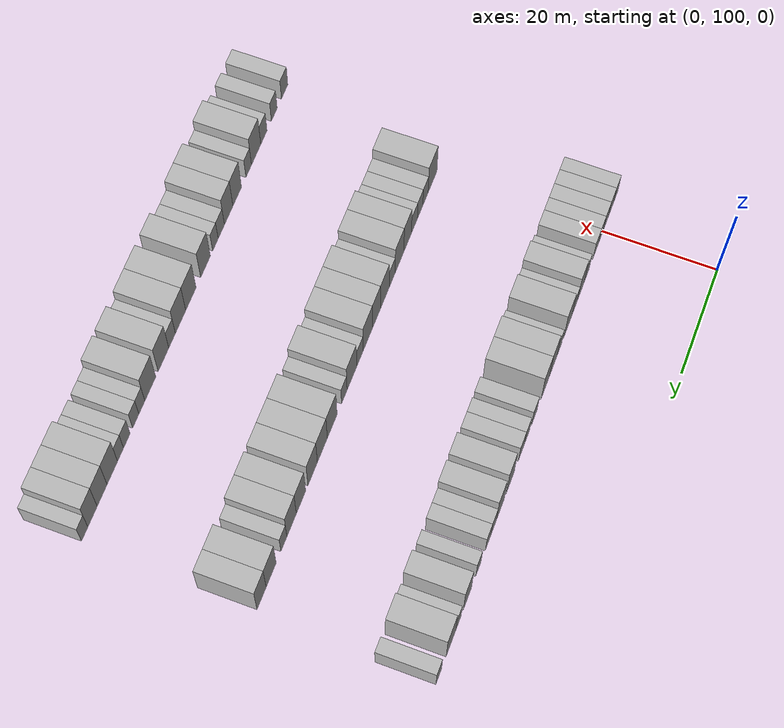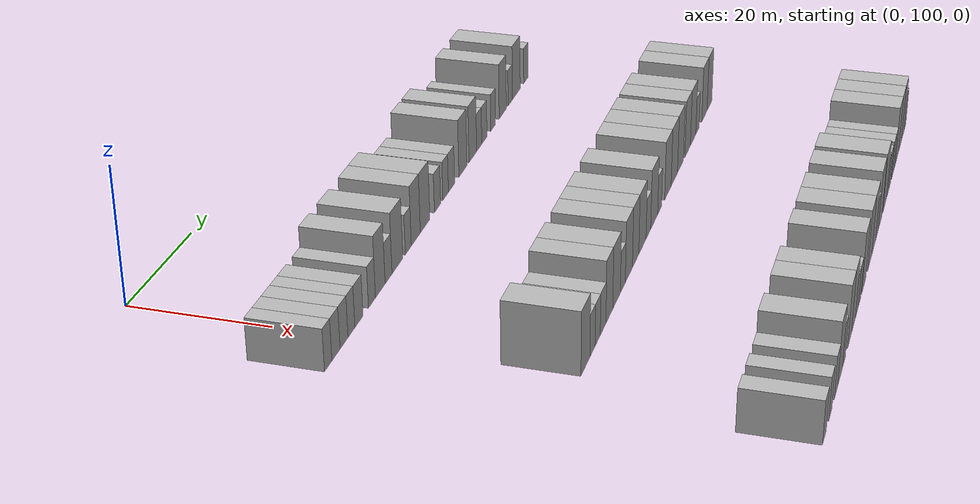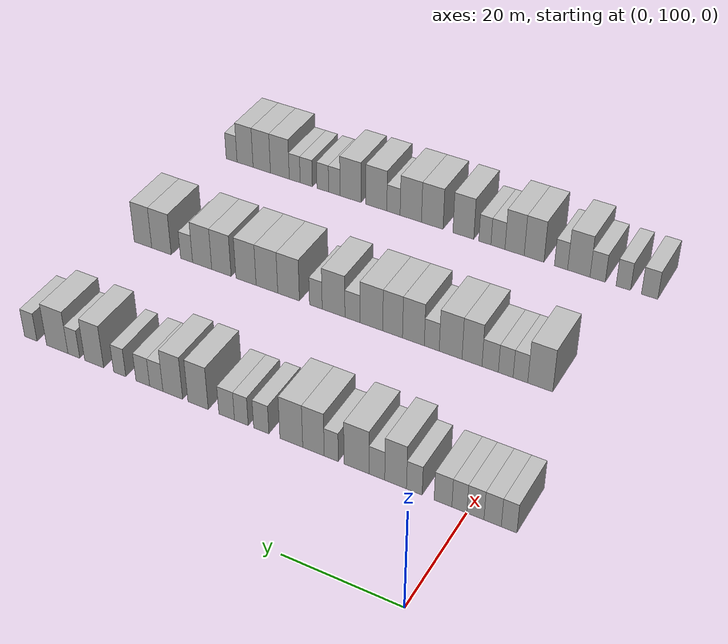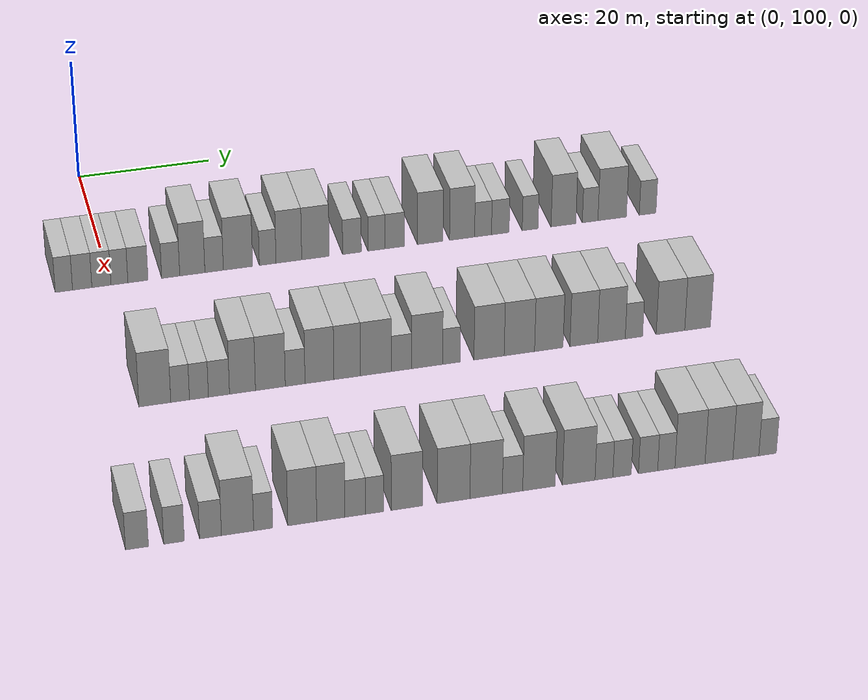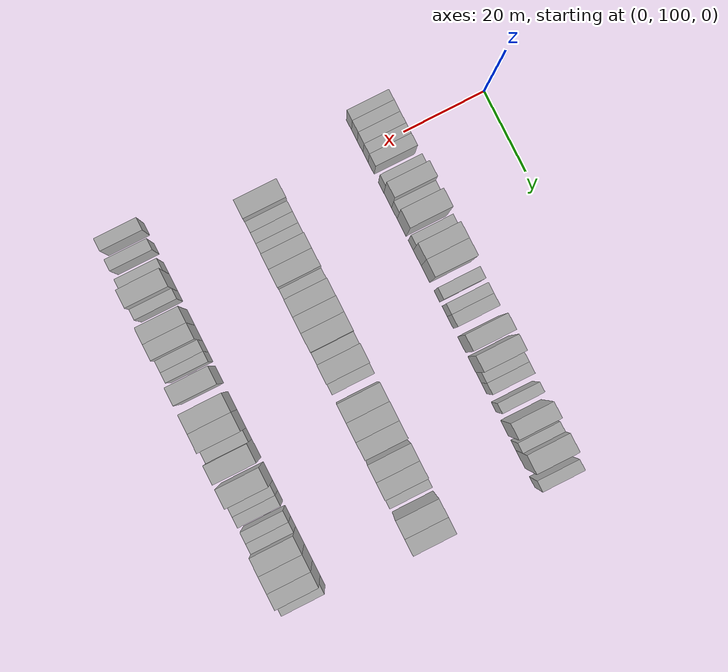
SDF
<sdf version="1.6">
 <world name="default">
  <model name="building_94">
   <static>1</static>
   <pose>25.0000 93.2036 0 0.000000 0.000000 0.000000</pose>
   <link name="link">
    <pose>0 0 3.00 0 0 0</pose>
    <collision name="collision"><geometry><box><size>10.0000 2.5115 6.0000</size></box></geometry></collision>
    <visual name="visual">
     <cast_shadows>0</cast_shadows>
     <geometry><box><size>10.0000 2.5115 6.0000</size></box></geometry>
     <material>
      <script>
       <uri>model://HANNAS_wall/materials/scripts</uri>
       <uri>model://HANNAS_wall/materials/textures</uri>
       <name>vrc/HANNAS_wall</name>
      </script>
     </material>
    </visual>
   </link>
  </model>
  <model name="building_95">
   <static>1</static>
   <pose>25.0000 95.8612 0 0.000000 0.000000 0.000000</pose>
   <link name="link">
    <pose>0 0 3.00 0 0 0</pose>
    <collision name="collision"><geometry><box><size>10.0000 2.8036 6.0000</size></box></geometry></collision>
    <visual name="visual">
     <cast_shadows>0</cast_shadows>
     <geometry><box><size>10.0000 2.8036 6.0000</size></box></geometry>
     <material>
      <script>
       <uri>model://HANNAS_wall/materials/scripts</uri>
       <uri>model://HANNAS_wall/materials/textures</uri>
       <name>vrc/HANNAS_wall</name>
      </script>
     </material>
    </visual>
   </link>
  </model>
  <model name="building_96">
   <static>1</static>
   <pose>25.0000 98.6532 0 0.000000 0.000000 0.000000</pose>
   <link name="link">
    <pose>0 0 3.00 0 0 0</pose>
    <collision name="collision"><geometry><box><size>10.0000 2.7805 6.0000</size></box></geometry></collision>
    <visual name="visual">
     <cast_shadows>0</cast_shadows>
     <geometry><box><size>10.0000 2.7805 6.0000</size></box></geometry>
     <material>
      <script>
       <uri>model://HANNAS_wall/materials/scripts</uri>
       <uri>model://HANNAS_wall/materials/textures</uri>
       <name>vrc/HANNAS_wall</name>
      </script>
     </material>
    </visual>
   </link>
  </model>
  <model name="building_97">
   <static>1</static>
   <pose>25.0000 101.2772 0 0.000000 0.000000 0.000000</pose>
   <link name="link">
    <pose>0 0 3.00 0 0 0</pose>
    <collision name="collision"><geometry><box><size>10.0000 2.4674 6.0000</size></box></geometry></collision>
    <visual name="visual">
     <cast_shadows>0</cast_shadows>
     <geometry><box><size>10.0000 2.4674 6.0000</size></box></geometry>
     <material>
      <script>
       <uri>model://HANNAS_wall/materials/scripts</uri>
       <uri>model://HANNAS_wall/materials/textures</uri>
       <name>vrc/HANNAS_wall</name>
      </script>
     </material>
    </visual>
   </link>
  </model>
  <model name="building_98">
   <static>1</static>
   <pose>25.0000 103.9851 0 0.000000 0.000000 0.000000</pose>
   <link name="link">
    <pose>0 0 3.00 0 0 0</pose>
    <collision name="collision"><geometry><box><size>10.0000 2.9483 6.0000</size></box></geometry></collision>
    <visual name="visual">
     <cast_shadows>0</cast_shadows>
     <geometry><box><size>10.0000 2.9483 6.0000</size></box></geometry>
     <material>
      <script>
       <uri>model://HANNAS_wall/materials/scripts</uri>
       <uri>model://HANNAS_wall/materials/textures</uri>
       <name>vrc/HANNAS_wall</name>
      </script>
     </material>
    </visual>
   </link>
  </model>
  <model name="building_99">
   <static>1</static>
   <pose>25.0000 108.7819 0 0.000000 0.000000 0.000000</pose>
   <link name="link">
    <pose>0 0 3.00 0 0 0</pose>
    <collision name="collision"><geometry><box><size>10.0000 2.6453 6.0000</size></box></geometry></collision>
    <visual name="visual">
     <cast_shadows>0</cast_shadows>
     <geometry><box><size>10.0000 2.6453 6.0000</size></box></geometry>
     <material>
      <script>
       <uri>model://HANNAS_wall/materials/scripts</uri>
       <uri>model://HANNAS_wall/materials/textures</uri>
       <name>vrc/HANNAS_wall</name>
      </script>
     </material>
    </visual>
   </link>
  </model>
  <model name="building_100">
   <static>1</static>
   <pose>25.0000 111.9564 0 0.000000 0.000000 0.000000</pose>
   <link name="link">
    <pose>0 0 4.50 0 0 0</pose>
    <collision name="collision"><geometry><box><size>10.0000 3.7037 9.0000</size></box></geometry></collision>
    <visual name="visual">
     <cast_shadows>0</cast_shadows>
     <geometry><box><size>10.0000 3.7037 9.0000</size></box></geometry>
     <material>
      <script>
       <uri>model://HANNAS_wall/materials/scripts</uri>
       <uri>model://HANNAS_wall/materials/textures</uri>
       <name>vrc/HANNAS_wall</name>
      </script>
     </material>
    </visual>
   </link>
  </model>
  <model name="building_101">
   <static>1</static>
   <pose>25.0000 115.1670 0 0.000000 0.000000 0.000000</pose>
   <link name="link">
    <pose>0 0 3.00 0 0 0</pose>
    <collision name="collision"><geometry><box><size>10.0000 2.7174 6.0000</size></box></geometry></collision>
    <visual name="visual">
     <cast_shadows>0</cast_shadows>
     <geometry><box><size>10.0000 2.7174 6.0000</size></box></geometry>
     <material>
      <script>
       <uri>model://HANNAS_wall/materials/scripts</uri>
       <uri>model://HANNAS_wall/materials/textures</uri>
       <name>vrc/HANNAS_wall</name>
      </script>
     </material>
    </visual>
   </link>
  </model>
  <model name="building_102">
   <static>1</static>
   <pose>25.0000 118.6928 0 0.000000 0.000000 0.000000</pose>
   <link name="link">
    <pose>0 0 4.50 0 0 0</pose>
    <collision name="collision"><geometry><box><size>10.0000 4.3341 9.0000</size></box></geometry></collision>
    <visual name="visual">
     <cast_shadows>0</cast_shadows>
     <geometry><box><size>10.0000 4.3341 9.0000</size></box></geometry>
     <material>
      <script>
       <uri>model://HANNAS_wall/materials/scripts</uri>
       <uri>model://HANNAS_wall/materials/textures</uri>
       <name>vrc/HANNAS_wall</name>
      </script>
     </material>
    </visual>
   </link>
  </model>
  <model name="building_103">
   <static>1</static>
   <pose>25.0000 123.0985 0 0.000000 0.000000 0.000000</pose>
   <link name="link">
    <pose>0 0 3.00 0 0 0</pose>
    <collision name="collision"><geometry><box><size>10.0000 2.4773 6.0000</size></box></geometry></collision>
    <visual name="visual">
     <cast_shadows>0</cast_shadows>
     <geometry><box><size>10.0000 2.4773 6.0000</size></box></geometry>
     <material>
      <script>
       <uri>model://HANNAS_wall/materials/scripts</uri>
       <uri>model://HANNAS_wall/materials/textures</uri>
       <name>vrc/HANNAS_wall</name>
      </script>
     </material>
    </visual>
   </link>
  </model>
  <model name="building_104">
   <static>1</static>
   <pose>25.0000 126.2475 0 0.000000 0.000000 0.000000</pose>
   <link name="link">
    <pose>0 0 4.50 0 0 0</pose>
    <collision name="collision"><geometry><box><size>10.0000 3.8206 9.0000</size></box></geometry></collision>
    <visual name="visual">
     <cast_shadows>0</cast_shadows>
     <geometry><box><size>10.0000 3.8206 9.0000</size></box></geometry>
     <material>
      <script>
       <uri>model://HANNAS_wall/materials/scripts</uri>
       <uri>model://HANNAS_wall/materials/textures</uri>
       <name>vrc/HANNAS_wall</name>
      </script>
     </material>
    </visual>
   </link>
  </model>
  <model name="building_105">
   <static>1</static>
   <pose>25.0000 130.2165 0 0.000000 0.000000 0.000000</pose>
   <link name="link">
    <pose>0 0 4.50 0 0 0</pose>
    <collision name="collision"><geometry><box><size>10.0000 4.1174 9.0000</size></box></geometry></collision>
    <visual name="visual">
     <cast_shadows>0</cast_shadows>
     <geometry><box><size>10.0000 4.1174 9.0000</size></box></geometry>
     <material>
      <script>
       <uri>model://HANNAS_wall/materials/scripts</uri>
       <uri>model://HANNAS_wall/materials/textures</uri>
       <name>vrc/HANNAS_wall</name>
      </script>
     </material>
    </visual>
   </link>
  </model>
  <model name="building_106">
   <static>1</static>
   <pose>25.0000 135.6750 0 0.000000 0.000000 0.000000</pose>
   <link name="link">
    <pose>0 0 3.00 0 0 0</pose>
    <collision name="collision"><geometry><box><size>10.0000 2.7996 6.0000</size></box></geometry></collision>
    <visual name="visual">
     <cast_shadows>0</cast_shadows>
     <geometry><box><size>10.0000 2.7996 6.0000</size></box></geometry>
     <material>
      <script>
       <uri>model://HANNAS_wall/materials/scripts</uri>
       <uri>model://HANNAS_wall/materials/textures</uri>
       <name>vrc/HANNAS_wall</name>
      </script>
     </material>
    </visual>
   </link>
  </model>
  <model name="building_107">
   <static>1</static>
   <pose>25.0000 139.3497 0 0.000000 0.000000 0.000000</pose>
   <link name="link">
    <pose>0 0 3.00 0 0 0</pose>
    <collision name="collision"><geometry><box><size>10.0000 2.5498 6.0000</size></box></geometry></collision>
    <visual name="visual">
     <cast_shadows>0</cast_shadows>
     <geometry><box><size>10.0000 2.5498 6.0000</size></box></geometry>
     <material>
      <script>
       <uri>model://HANNAS_wall/materials/scripts</uri>
       <uri>model://HANNAS_wall/materials/textures</uri>
       <name>vrc/HANNAS_wall</name>
      </script>
     </material>
    </visual>
   </link>
  </model>
  <model name="building_108">
   <static>1</static>
   <pose>25.0000 142.0823 0 0.000000 0.000000 0.000000</pose>
   <link name="link">
    <pose>0 0 3.00 0 0 0</pose>
    <collision name="collision"><geometry><box><size>10.0000 2.9153 6.0000</size></box></geometry></collision>
    <visual name="visual">
     <cast_shadows>0</cast_shadows>
     <geometry><box><size>10.0000 2.9153 6.0000</size></box></geometry>
     <material>
      <script>
       <uri>model://HANNAS_wall/materials/scripts</uri>
       <uri>model://HANNAS_wall/materials/textures</uri>
       <name>vrc/HANNAS_wall</name>
      </script>
     </material>
    </visual>
   </link>
  </model>
  <model name="building_109">
   <static>1</static>
   <pose>25.0000 147.4731 0 0.000000 0.000000 0.000000</pose>
   <link name="link">
    <pose>0 0 4.50 0 0 0</pose>
    <collision name="collision"><geometry><box><size>10.0000 3.8664 9.0000</size></box></geometry></collision>
    <visual name="visual">
     <cast_shadows>0</cast_shadows>
     <geometry><box><size>10.0000 3.8664 9.0000</size></box></geometry>
     <material>
      <script>
       <uri>model://HANNAS_wall/materials/scripts</uri>
       <uri>model://HANNAS_wall/materials/textures</uri>
       <name>vrc/HANNAS_wall</name>
      </script>
     </material>
    </visual>
   </link>
  </model>
  <model name="building_110">
   <static>1</static>
   <pose>25.0000 152.3108 0 0.000000 0.000000 0.000000</pose>
   <link name="link">
    <pose>0 0 4.50 0 0 0</pose>
    <collision name="collision"><geometry><box><size>10.0000 3.8090 9.0000</size></box></geometry></collision>
    <visual name="visual">
     <cast_shadows>0</cast_shadows>
     <geometry><box><size>10.0000 3.8090 9.0000</size></box></geometry>
     <material>
      <script>
       <uri>model://HANNAS_wall/materials/scripts</uri>
       <uri>model://HANNAS_wall/materials/textures</uri>
       <name>vrc/HANNAS_wall</name>
      </script>
     </material>
    </visual>
   </link>
  </model>
  <model name="building_111">
   <static>1</static>
   <pose>25.0000 155.5063 0 0.000000 0.000000 0.000000</pose>
   <link name="link">
    <pose>0 0 3.00 0 0 0</pose>
    <collision name="collision"><geometry><box><size>10.0000 2.5820 6.0000</size></box></geometry></collision>
    <visual name="visual">
     <cast_shadows>0</cast_shadows>
     <geometry><box><size>10.0000 2.5820 6.0000</size></box></geometry>
     <material>
      <script>
       <uri>model://HANNAS_wall/materials/scripts</uri>
       <uri>model://HANNAS_wall/materials/textures</uri>
       <name>vrc/HANNAS_wall</name>
      </script>
     </material>
    </visual>
   </link>
  </model>
  <model name="building_112">
   <static>1</static>
   <pose>25.0000 158.1431 0 0.000000 0.000000 0.000000</pose>
   <link name="link">
    <pose>0 0 3.00 0 0 0</pose>
    <collision name="collision"><geometry><box><size>10.0000 2.6916 6.0000</size></box></geometry></collision>
    <visual name="visual">
     <cast_shadows>0</cast_shadows>
     <geometry><box><size>10.0000 2.6916 6.0000</size></box></geometry>
     <material>
      <script>
       <uri>model://HANNAS_wall/materials/scripts</uri>
       <uri>model://HANNAS_wall/materials/textures</uri>
       <name>vrc/HANNAS_wall</name>
      </script>
     </material>
    </visual>
   </link>
  </model>
  <model name="building_113">
   <static>1</static>
   <pose>25.0000 162.7051 0 0.000000 0.000000 0.000000</pose>
   <link name="link">
    <pose>0 0 3.00 0 0 0</pose>
    <collision name="collision"><geometry><box><size>10.0000 2.4324 6.0000</size></box></geometry></collision>
    <visual name="visual">
     <cast_shadows>0</cast_shadows>
     <geometry><box><size>10.0000 2.4324 6.0000</size></box></geometry>
     <material>
      <script>
       <uri>model://HANNAS_wall/materials/scripts</uri>
       <uri>model://HANNAS_wall/materials/textures</uri>
       <name>vrc/HANNAS_wall</name>
      </script>
     </material>
    </visual>
   </link>
  </model>
  <model name="building_114">
   <static>1</static>
   <pose>25.0000 167.8328 0 0.000000 0.000000 0.000000</pose>
   <link name="link">
    <pose>0 0 4.50 0 0 0</pose>
    <collision name="collision"><geometry><box><size>10.0000 3.8229 9.0000</size></box></geometry></collision>
    <visual name="visual">
     <cast_shadows>0</cast_shadows>
     <geometry><box><size>10.0000 3.8229 9.0000</size></box></geometry>
     <material>
      <script>
       <uri>model://HANNAS_wall/materials/scripts</uri>
       <uri>model://HANNAS_wall/materials/textures</uri>
       <name>vrc/HANNAS_wall</name>
      </script>
     </material>
    </visual>
   </link>
  </model>
  <model name="building_115">
   <static>1</static>
   <pose>25.0000 171.9515 0 0.000000 0.000000 0.000000</pose>
   <link name="link">
    <pose>0 0 3.00 0 0 0</pose>
    <collision name="collision"><geometry><box><size>10.0000 2.4145 6.0000</size></box></geometry></collision>
    <visual name="visual">
     <cast_shadows>0</cast_shadows>
     <geometry><box><size>10.0000 2.4145 6.0000</size></box></geometry>
     <material>
      <script>
       <uri>model://HANNAS_wall/materials/scripts</uri>
       <uri>model://HANNAS_wall/materials/textures</uri>
       <name>vrc/HANNAS_wall</name>
      </script>
     </material>
    </visual>
   </link>
  </model>
  <model name="building_116">
   <static>1</static>
   <pose>25.0000 175.3631 0 0.000000 0.000000 0.000000</pose>
   <link name="link">
    <pose>0 0 4.50 0 0 0</pose>
    <collision name="collision"><geometry><box><size>10.0000 4.4089 9.0000</size></box></geometry></collision>
    <visual name="visual">
     <cast_shadows>0</cast_shadows>
     <geometry><box><size>10.0000 4.4089 9.0000</size></box></geometry>
     <material>
      <script>
       <uri>model://HANNAS_wall/materials/scripts</uri>
       <uri>model://HANNAS_wall/materials/textures</uri>
       <name>vrc/HANNAS_wall</name>
      </script>
     </material>
    </visual>
   </link>
  </model>
  <model name="building_117">
   <static>1</static>
   <pose>25.0000 180.8667 0 0.000000 0.000000 0.000000</pose>
   <link name="link">
    <pose>0 0 3.00 0 0 0</pose>
    <collision name="collision"><geometry><box><size>10.0000 2.5982 6.0000</size></box></geometry></collision>
    <visual name="visual">
     <cast_shadows>0</cast_shadows>
     <geometry><box><size>10.0000 2.5982 6.0000</size></box></geometry>
     <material>
      <script>
       <uri>model://HANNAS_wall/materials/scripts</uri>
       <uri>model://HANNAS_wall/materials/textures</uri>
       <name>vrc/HANNAS_wall</name>
      </script>
     </material>
    </visual>
   </link>
  </model>
  <model name="building_231">
   <static>1</static>
   <pose>55.0000 101.2768 0 0.000000 0.000000 0.000000</pose>
   <link name="link">
    <pose>0 0 4.50 0 0 0</pose>
    <collision name="collision"><geometry><box><size>10.0000 4.4122 9.0000</size></box></geometry></collision>
    <visual name="visual">
     <cast_shadows>0</cast_shadows>
     <geometry><box><size>10.0000 4.4122 9.0000</size></box></geometry>
     <material>
      <script>
       <uri>model://HANNAS_wall/materials/scripts</uri>
       <uri>model://HANNAS_wall/materials/textures</uri>
       <name>vrc/HANNAS_wall</name>
      </script>
     </material>
    </visual>
   </link>
  </model>
  <model name="building_232">
   <static>1</static>
   <pose>55.0000 104.7790 0 0.000000 0.000000 0.000000</pose>
   <link name="link">
    <pose>0 0 3.00 0 0 0</pose>
    <collision name="collision"><geometry><box><size>10.0000 2.5921 6.0000</size></box></geometry></collision>
    <visual name="visual">
     <cast_shadows>0</cast_shadows>
     <geometry><box><size>10.0000 2.5921 6.0000</size></box></geometry>
     <material>
      <script>
       <uri>model://HANNAS_wall/materials/scripts</uri>
       <uri>model://HANNAS_wall/materials/textures</uri>
       <name>vrc/HANNAS_wall</name>
      </script>
     </material>
    </visual>
   </link>
  </model>
  <model name="building_233">
   <static>1</static>
   <pose>55.0000 107.3937 0 0.000000 0.000000 0.000000</pose>
   <link name="link">
    <pose>0 0 3.00 0 0 0</pose>
    <collision name="collision"><geometry><box><size>10.0000 2.6373 6.0000</size></box></geometry></collision>
    <visual name="visual">
     <cast_shadows>0</cast_shadows>
     <geometry><box><size>10.0000 2.6373 6.0000</size></box></geometry>
     <material>
      <script>
       <uri>model://HANNAS_wall/materials/scripts</uri>
       <uri>model://HANNAS_wall/materials/textures</uri>
       <name>vrc/HANNAS_wall</name>
      </script>
     </material>
    </visual>
   </link>
  </model>
  <model name="building_234">
   <static>1</static>
   <pose>55.0000 110.1844 0 0.000000 0.000000 0.000000</pose>
   <link name="link">
    <pose>0 0 3.00 0 0 0</pose>
    <collision name="collision"><geometry><box><size>10.0000 2.9441 6.0000</size></box></geometry></collision>
    <visual name="visual">
     <cast_shadows>0</cast_shadows>
     <geometry><box><size>10.0000 2.9441 6.0000</size></box></geometry>
     <material>
      <script>
       <uri>model://HANNAS_wall/materials/scripts</uri>
       <uri>model://HANNAS_wall/materials/textures</uri>
       <name>vrc/HANNAS_wall</name>
      </script>
     </material>
    </visual>
   </link>
  </model>
  <model name="building_235">
   <static>1</static>
   <pose>55.0000 113.4729 0 0.000000 0.000000 0.000000</pose>
   <link name="link">
    <pose>0 0 4.50 0 0 0</pose>
    <collision name="collision"><geometry><box><size>10.0000 3.6328 9.0000</size></box></geometry></collision>
    <visual name="visual">
     <cast_shadows>0</cast_shadows>
     <geometry><box><size>10.0000 3.6328 9.0000</size></box></geometry>
     <material>
      <script>
       <uri>model://HANNAS_wall/materials/scripts</uri>
       <uri>model://HANNAS_wall/materials/textures</uri>
       <name>vrc/HANNAS_wall</name>
      </script>
     </material>
    </visual>
   </link>
  </model>
  <model name="building_236">
   <static>1</static>
   <pose>55.0000 117.3850 0 0.000000 0.000000 0.000000</pose>
   <link name="link">
    <pose>0 0 4.50 0 0 0</pose>
    <collision name="collision"><geometry><box><size>10.0000 4.1915 9.0000</size></box></geometry></collision>
    <visual name="visual">
     <cast_shadows>0</cast_shadows>
     <geometry><box><size>10.0000 4.1915 9.0000</size></box></geometry>
     <material>
      <script>
       <uri>model://HANNAS_wall/materials/scripts</uri>
       <uri>model://HANNAS_wall/materials/textures</uri>
       <name>vrc/HANNAS_wall</name>
      </script>
     </material>
    </visual>
   </link>
  </model>
  <model name="building_237">
   <static>1</static>
   <pose>55.0000 120.8680 0 0.000000 0.000000 0.000000</pose>
   <link name="link">
    <pose>0 0 3.00 0 0 0</pose>
    <collision name="collision"><geometry><box><size>10.0000 2.7745 6.0000</size></box></geometry></collision>
    <visual name="visual">
     <cast_shadows>0</cast_shadows>
     <geometry><box><size>10.0000 2.7745 6.0000</size></box></geometry>
     <material>
      <script>
       <uri>model://HANNAS_wall/materials/scripts</uri>
       <uri>model://HANNAS_wall/materials/textures</uri>
       <name>vrc/HANNAS_wall</name>
      </script>
     </material>
    </visual>
   </link>
  </model>
  <model name="building_238">
   <static>1</static>
   <pose>55.0000 124.2968 0 0.000000 0.000000 0.000000</pose>
   <link name="link">
    <pose>0 0 4.50 0 0 0</pose>
    <collision name="collision"><geometry><box><size>10.0000 4.0833 9.0000</size></box></geometry></collision>
    <visual name="visual">
     <cast_shadows>0</cast_shadows>
     <geometry><box><size>10.0000 4.0833 9.0000</size></box></geometry>
     <material>
      <script>
       <uri>model://HANNAS_wall/materials/scripts</uri>
       <uri>model://HANNAS_wall/materials/textures</uri>
       <name>vrc/HANNAS_wall</name>
      </script>
     </material>
    </visual>
   </link>
  </model>
  <model name="building_239">
   <static>1</static>
   <pose>55.0000 128.2107 0 0.000000 0.000000 0.000000</pose>
   <link name="link">
    <pose>0 0 4.50 0 0 0</pose>
    <collision name="collision"><geometry><box><size>10.0000 3.7443 9.0000</size></box></geometry></collision>
    <visual name="visual">
     <cast_shadows>0</cast_shadows>
     <geometry><box><size>10.0000 3.7443 9.0000</size></box></geometry>
     <material>
      <script>
       <uri>model://HANNAS_wall/materials/scripts</uri>
       <uri>model://HANNAS_wall/materials/textures</uri>
       <name>vrc/HANNAS_wall</name>
      </script>
     </material>
    </visual>
   </link>
  </model>
  <model name="building_240">
   <static>1</static>
   <pose>55.0000 132.2738 0 0.000000 0.000000 0.000000</pose>
   <link name="link">
    <pose>0 0 4.50 0 0 0</pose>
    <collision name="collision"><geometry><box><size>10.0000 4.3819 9.0000</size></box></geometry></collision>
    <visual name="visual">
     <cast_shadows>0</cast_shadows>
     <geometry><box><size>10.0000 4.3819 9.0000</size></box></geometry>
     <material>
      <script>
       <uri>model://HANNAS_wall/materials/scripts</uri>
       <uri>model://HANNAS_wall/materials/textures</uri>
       <name>vrc/HANNAS_wall</name>
      </script>
     </material>
    </visual>
   </link>
  </model>
  <model name="building_241">
   <static>1</static>
   <pose>55.0000 135.9151 0 0.000000 0.000000 0.000000</pose>
   <link name="link">
    <pose>0 0 3.00 0 0 0</pose>
    <collision name="collision"><geometry><box><size>10.0000 2.9008 6.0000</size></box></geometry></collision>
    <visual name="visual">
     <cast_shadows>0</cast_shadows>
     <geometry><box><size>10.0000 2.9008 6.0000</size></box></geometry>
     <material>
      <script>
       <uri>model://HANNAS_wall/materials/scripts</uri>
       <uri>model://HANNAS_wall/materials/textures</uri>
       <name>vrc/HANNAS_wall</name>
      </script>
     </material>
    </visual>
   </link>
  </model>
  <model name="building_242">
   <static>1</static>
   <pose>55.0000 139.5942 0 0.000000 0.000000 0.000000</pose>
   <link name="link">
    <pose>0 0 4.50 0 0 0</pose>
    <collision name="collision"><geometry><box><size>10.0000 4.4574 9.0000</size></box></geometry></collision>
    <visual name="visual">
     <cast_shadows>0</cast_shadows>
     <geometry><box><size>10.0000 4.4574 9.0000</size></box></geometry>
     <material>
      <script>
       <uri>model://HANNAS_wall/materials/scripts</uri>
       <uri>model://HANNAS_wall/materials/textures</uri>
       <name>vrc/HANNAS_wall</name>
      </script>
     </material>
    </visual>
   </link>
  </model>
  <model name="building_243">
   <static>1</static>
   <pose>55.0000 143.0747 0 0.000000 0.000000 0.000000</pose>
   <link name="link">
    <pose>0 0 3.00 0 0 0</pose>
    <collision name="collision"><geometry><box><size>10.0000 2.5034 6.0000</size></box></geometry></collision>
    <visual name="visual">
     <cast_shadows>0</cast_shadows>
     <geometry><box><size>10.0000 2.5034 6.0000</size></box></geometry>
     <material>
      <script>
       <uri>model://HANNAS_wall/materials/scripts</uri>
       <uri>model://HANNAS_wall/materials/textures</uri>
       <name>vrc/HANNAS_wall</name>
      </script>
     </material>
    </visual>
   </link>
  </model>
  <model name="building_244">
   <static>1</static>
   <pose>55.0000 148.5050 0 0.000000 0.000000 0.000000</pose>
   <link name="link">
    <pose>0 0 4.50 0 0 0</pose>
    <collision name="collision"><geometry><box><size>10.0000 4.3573 9.0000</size></box></geometry></collision>
    <visual name="visual">
     <cast_shadows>0</cast_shadows>
     <geometry><box><size>10.0000 4.3573 9.0000</size></box></geometry>
     <material>
      <script>
       <uri>model://HANNAS_wall/materials/scripts</uri>
       <uri>model://HANNAS_wall/materials/textures</uri>
       <name>vrc/HANNAS_wall</name>
      </script>
     </material>
    </visual>
   </link>
  </model>
  <model name="building_245">
   <static>1</static>
   <pose>55.0000 152.8853 0 0.000000 0.000000 0.000000</pose>
   <link name="link">
    <pose>0 0 4.50 0 0 0</pose>
    <collision name="collision"><geometry><box><size>10.0000 4.4033 9.0000</size></box></geometry></collision>
    <visual name="visual">
     <cast_shadows>0</cast_shadows>
     <geometry><box><size>10.0000 4.4033 9.0000</size></box></geometry>
     <material>
      <script>
       <uri>model://HANNAS_wall/materials/scripts</uri>
       <uri>model://HANNAS_wall/materials/textures</uri>
       <name>vrc/HANNAS_wall</name>
      </script>
     </material>
    </visual>
   </link>
  </model>
  <model name="building_246">
   <static>1</static>
   <pose>55.0000 157.1606 0 0.000000 0.000000 0.000000</pose>
   <link name="link">
    <pose>0 0 4.50 0 0 0</pose>
    <collision name="collision"><geometry><box><size>10.0000 4.1473 9.0000</size></box></geometry></collision>
    <visual name="visual">
     <cast_shadows>0</cast_shadows>
     <geometry><box><size>10.0000 4.1473 9.0000</size></box></geometry>
     <material>
      <script>
       <uri>model://HANNAS_wall/materials/scripts</uri>
       <uri>model://HANNAS_wall/materials/textures</uri>
       <name>vrc/HANNAS_wall</name>
      </script>
     </material>
    </visual>
   </link>
  </model>
  <model name="building_247">
   <static>1</static>
   <pose>55.0000 162.2534 0 0.000000 0.000000 0.000000</pose>
   <link name="link">
    <pose>0 0 4.50 0 0 0</pose>
    <collision name="collision"><geometry><box><size>10.0000 4.0384 9.0000</size></box></geometry></collision>
    <visual name="visual">
     <cast_shadows>0</cast_shadows>
     <geometry><box><size>10.0000 4.0384 9.0000</size></box></geometry>
     <material>
      <script>
       <uri>model://HANNAS_wall/materials/scripts</uri>
       <uri>model://HANNAS_wall/materials/textures</uri>
       <name>vrc/HANNAS_wall</name>
      </script>
     </material>
    </visual>
   </link>
  </model>
  <model name="building_248">
   <static>1</static>
   <pose>55.0000 166.2968 0 0.000000 0.000000 0.000000</pose>
   <link name="link">
    <pose>0 0 4.50 0 0 0</pose>
    <collision name="collision"><geometry><box><size>10.0000 4.0483 9.0000</size></box></geometry></collision>
    <visual name="visual">
     <cast_shadows>0</cast_shadows>
     <geometry><box><size>10.0000 4.0483 9.0000</size></box></geometry>
     <material>
      <script>
       <uri>model://HANNAS_wall/materials/scripts</uri>
       <uri>model://HANNAS_wall/materials/textures</uri>
       <name>vrc/HANNAS_wall</name>
      </script>
     </material>
    </visual>
   </link>
  </model>
  <model name="building_249">
   <static>1</static>
   <pose>55.0000 169.5948 0 0.000000 0.000000 0.000000</pose>
   <link name="link">
    <pose>0 0 3.00 0 0 0</pose>
    <collision name="collision"><geometry><box><size>10.0000 2.5478 6.0000</size></box></geometry></collision>
    <visual name="visual">
     <cast_shadows>0</cast_shadows>
     <geometry><box><size>10.0000 2.5478 6.0000</size></box></geometry>
     <material>
      <script>
       <uri>model://HANNAS_wall/materials/scripts</uri>
       <uri>model://HANNAS_wall/materials/textures</uri>
       <name>vrc/HANNAS_wall</name>
      </script>
     </material>
    </visual>
   </link>
  </model>
  <model name="building_250">
   <static>1</static>
   <pose>55.0000 174.9757 0 0.000000 0.000000 0.000000</pose>
   <link name="link">
    <pose>0 0 4.50 0 0 0</pose>
    <collision name="collision"><geometry><box><size>10.0000 4.2140 9.0000</size></box></geometry></collision>
    <visual name="visual">
     <cast_shadows>0</cast_shadows>
     <geometry><box><size>10.0000 4.2140 9.0000</size></box></geometry>
     <material>
      <script>
       <uri>model://HANNAS_wall/materials/scripts</uri>
       <uri>model://HANNAS_wall/materials/textures</uri>
       <name>vrc/HANNAS_wall</name>
      </script>
     </material>
    </visual>
   </link>
  </model>
  <model name="building_251">
   <static>1</static>
   <pose>55.0000 178.9825 0 0.000000 0.000000 0.000000</pose>
   <link name="link">
    <pose>0 0 4.50 0 0 0</pose>
    <collision name="collision"><geometry><box><size>10.0000 3.7996 9.0000</size></box></geometry></collision>
    <visual name="visual">
     <cast_shadows>0</cast_shadows>
     <geometry><box><size>10.0000 3.7996 9.0000</size></box></geometry>
     <material>
      <script>
       <uri>model://HANNAS_wall/materials/scripts</uri>
       <uri>model://HANNAS_wall/materials/textures</uri>
       <name>vrc/HANNAS_wall</name>
      </script>
     </material>
    </visual>
   </link>
  </model>
  <model name="building_363">
   <static>1</static>
   <pose>85.0000 93.7568 0 0.000000 0.000000 0.000000</pose>
   <link name="link">
    <pose>0 0 3.00 0 0 0</pose>
    <collision name="collision"><geometry><box><size>10.0000 2.9893 6.0000</size></box></geometry></collision>
    <visual name="visual">
     <cast_shadows>0</cast_shadows>
     <geometry><box><size>10.0000 2.9893 6.0000</size></box></geometry>
     <material>
      <script>
       <uri>model://HANNAS_wall/materials/scripts</uri>
       <uri>model://HANNAS_wall/materials/textures</uri>
       <name>vrc/HANNAS_wall</name>
      </script>
     </material>
    </visual>
   </link>
  </model>
  <model name="building_364">
   <static>1</static>
   <pose>85.0000 98.5959 0 0.000000 0.000000 0.000000</pose>
   <link name="link">
    <pose>0 0 3.00 0 0 0</pose>
    <collision name="collision"><geometry><box><size>10.0000 2.6890 6.0000</size></box></geometry></collision>
    <visual name="visual">
     <cast_shadows>0</cast_shadows>
     <geometry><box><size>10.0000 2.6890 6.0000</size></box></geometry>
     <material>
      <script>
       <uri>model://HANNAS_wall/materials/scripts</uri>
       <uri>model://HANNAS_wall/materials/textures</uri>
       <name>vrc/HANNAS_wall</name>
      </script>
     </material>
    </visual>
   </link>
  </model>
  <model name="building_365">
   <static>1</static>
   <pose>85.0000 103.3752 0 0.000000 0.000000 0.000000</pose>
   <link name="link">
    <pose>0 0 3.00 0 0 0</pose>
    <collision name="collision"><geometry><box><size>10.0000 2.8696 6.0000</size></box></geometry></collision>
    <visual name="visual">
     <cast_shadows>0</cast_shadows>
     <geometry><box><size>10.0000 2.8696 6.0000</size></box></geometry>
     <material>
      <script>
       <uri>model://HANNAS_wall/materials/scripts</uri>
       <uri>model://HANNAS_wall/materials/textures</uri>
       <name>vrc/HANNAS_wall</name>
      </script>
     </material>
    </visual>
   </link>
  </model>
  <model name="building_366">
   <static>1</static>
   <pose>85.0000 106.9329 0 0.000000 0.000000 0.000000</pose>
   <link name="link">
    <pose>0 0 4.50 0 0 0</pose>
    <collision name="collision"><geometry><box><size>10.0000 4.2458 9.0000</size></box></geometry></collision>
    <visual name="visual">
     <cast_shadows>0</cast_shadows>
     <geometry><box><size>10.0000 4.2458 9.0000</size></box></geometry>
     <material>
      <script>
       <uri>model://HANNAS_wall/materials/scripts</uri>
       <uri>model://HANNAS_wall/materials/textures</uri>
       <name>vrc/HANNAS_wall</name>
      </script>
     </material>
    </visual>
   </link>
  </model>
  <model name="building_367">
   <static>1</static>
   <pose>85.0000 110.3141 0 0.000000 0.000000 0.000000</pose>
   <link name="link">
    <pose>0 0 3.00 0 0 0</pose>
    <collision name="collision"><geometry><box><size>10.0000 2.5165 6.0000</size></box></geometry></collision>
    <visual name="visual">
     <cast_shadows>0</cast_shadows>
     <geometry><box><size>10.0000 2.5165 6.0000</size></box></geometry>
     <material>
      <script>
       <uri>model://HANNAS_wall/materials/scripts</uri>
       <uri>model://HANNAS_wall/materials/textures</uri>
       <name>vrc/HANNAS_wall</name>
      </script>
     </material>
    </visual>
   </link>
  </model>
  <model name="building_368">
   <static>1</static>
   <pose>85.0000 115.4939 0 0.000000 0.000000 0.000000</pose>
   <link name="link">
    <pose>0 0 4.50 0 0 0</pose>
    <collision name="collision"><geometry><box><size>10.0000 3.8431 9.0000</size></box></geometry></collision>
    <visual name="visual">
     <cast_shadows>0</cast_shadows>
     <geometry><box><size>10.0000 3.8431 9.0000</size></box></geometry>
     <material>
      <script>
       <uri>model://HANNAS_wall/materials/scripts</uri>
       <uri>model://HANNAS_wall/materials/textures</uri>
       <name>vrc/HANNAS_wall</name>
      </script>
     </material>
    </visual>
   </link>
  </model>
  <model name="building_369">
   <static>1</static>
   <pose>85.0000 119.2937 0 0.000000 0.000000 0.000000</pose>
   <link name="link">
    <pose>0 0 4.50 0 0 0</pose>
    <collision name="collision"><geometry><box><size>10.0000 3.7565 9.0000</size></box></geometry></collision>
    <visual name="visual">
     <cast_shadows>0</cast_shadows>
     <geometry><box><size>10.0000 3.7565 9.0000</size></box></geometry>
     <material>
      <script>
       <uri>model://HANNAS_wall/materials/scripts</uri>
       <uri>model://HANNAS_wall/materials/textures</uri>
       <name>vrc/HANNAS_wall</name>
      </script>
     </material>
    </visual>
   </link>
  </model>
  <model name="building_370">
   <static>1</static>
   <pose>85.0000 122.5537 0 0.000000 0.000000 0.000000</pose>
   <link name="link">
    <pose>0 0 3.00 0 0 0</pose>
    <collision name="collision"><geometry><box><size>10.0000 2.7636 6.0000</size></box></geometry></collision>
    <visual name="visual">
     <cast_shadows>0</cast_shadows>
     <geometry><box><size>10.0000 2.7636 6.0000</size></box></geometry>
     <material>
      <script>
       <uri>model://HANNAS_wall/materials/scripts</uri>
       <uri>model://HANNAS_wall/materials/textures</uri>
       <name>vrc/HANNAS_wall</name>
      </script>
     </material>
    </visual>
   </link>
  </model>
  <model name="building_371">
   <static>1</static>
   <pose>85.0000 125.1464 0 0.000000 0.000000 0.000000</pose>
   <link name="link">
    <pose>0 0 3.00 0 0 0</pose>
    <collision name="collision"><geometry><box><size>10.0000 2.4218 6.0000</size></box></geometry></collision>
    <visual name="visual">
     <cast_shadows>0</cast_shadows>
     <geometry><box><size>10.0000 2.4218 6.0000</size></box></geometry>
     <material>
      <script>
       <uri>model://HANNAS_wall/materials/scripts</uri>
       <uri>model://HANNAS_wall/materials/textures</uri>
       <name>vrc/HANNAS_wall</name>
      </script>
     </material>
    </visual>
   </link>
  </model>
  <model name="building_372">
   <static>1</static>
   <pose>85.0000 129.4546 0 0.000000 0.000000 0.000000</pose>
   <link name="link">
    <pose>0 0 4.50 0 0 0</pose>
    <collision name="collision"><geometry><box><size>10.0000 4.1946 9.0000</size></box></geometry></collision>
    <visual name="visual">
     <cast_shadows>0</cast_shadows>
     <geometry><box><size>10.0000 4.1946 9.0000</size></box></geometry>
     <material>
      <script>
       <uri>model://HANNAS_wall/materials/scripts</uri>
       <uri>model://HANNAS_wall/materials/textures</uri>
       <name>vrc/HANNAS_wall</name>
      </script>
     </material>
    </visual>
   </link>
  </model>
  <model name="building_373">
   <static>1</static>
   <pose>85.0000 135.7625 0 0.000000 0.000000 0.000000</pose>
   <link name="link">
    <pose>0 0 4.50 0 0 0</pose>
    <collision name="collision"><geometry><box><size>10.0000 4.4211 9.0000</size></box></geometry></collision>
    <visual name="visual">
     <cast_shadows>0</cast_shadows>
     <geometry><box><size>10.0000 4.4211 9.0000</size></box></geometry>
     <material>
      <script>
       <uri>model://HANNAS_wall/materials/scripts</uri>
       <uri>model://HANNAS_wall/materials/textures</uri>
       <name>vrc/HANNAS_wall</name>
      </script>
     </material>
    </visual>
   </link>
  </model>
  <model name="building_374">
   <static>1</static>
   <pose>85.0000 140.1780 0 0.000000 0.000000 0.000000</pose>
   <link name="link">
    <pose>0 0 4.50 0 0 0</pose>
    <collision name="collision"><geometry><box><size>10.0000 4.4099 9.0000</size></box></geometry></collision>
    <visual name="visual">
     <cast_shadows>0</cast_shadows>
     <geometry><box><size>10.0000 4.4099 9.0000</size></box></geometry>
     <material>
      <script>
       <uri>model://HANNAS_wall/materials/scripts</uri>
       <uri>model://HANNAS_wall/materials/textures</uri>
       <name>vrc/HANNAS_wall</name>
      </script>
     </material>
    </visual>
   </link>
  </model>
  <model name="building_375">
   <static>1</static>
   <pose>85.0000 143.7717 0 0.000000 0.000000 0.000000</pose>
   <link name="link">
    <pose>0 0 3.00 0 0 0</pose>
    <collision name="collision"><geometry><box><size>10.0000 2.7774 6.0000</size></box></geometry></collision>
    <visual name="visual">
     <cast_shadows>0</cast_shadows>
     <geometry><box><size>10.0000 2.7774 6.0000</size></box></geometry>
     <material>
      <script>
       <uri>model://HANNAS_wall/materials/scripts</uri>
       <uri>model://HANNAS_wall/materials/textures</uri>
       <name>vrc/HANNAS_wall</name>
      </script>
     </material>
    </visual>
   </link>
  </model>
  <model name="building_376">
   <static>1</static>
   <pose>85.0000 147.3796 0 0.000000 0.000000 0.000000</pose>
   <link name="link">
    <pose>0 0 4.50 0 0 0</pose>
    <collision name="collision"><geometry><box><size>10.0000 4.4384 9.0000</size></box></geometry></collision>
    <visual name="visual">
     <cast_shadows>0</cast_shadows>
     <geometry><box><size>10.0000 4.4384 9.0000</size></box></geometry>
     <material>
      <script>
       <uri>model://HANNAS_wall/materials/scripts</uri>
       <uri>model://HANNAS_wall/materials/textures</uri>
       <name>vrc/HANNAS_wall</name>
      </script>
     </material>
    </visual>
   </link>
  </model>
  <model name="building_377">
   <static>1</static>
   <pose>85.0000 152.8419 0 0.000000 0.000000 0.000000</pose>
   <link name="link">
    <pose>0 0 4.50 0 0 0</pose>
    <collision name="collision"><geometry><box><size>10.0000 4.4863 9.0000</size></box></geometry></collision>
    <visual name="visual">
     <cast_shadows>0</cast_shadows>
     <geometry><box><size>10.0000 4.4863 9.0000</size></box></geometry>
     <material>
      <script>
       <uri>model://HANNAS_wall/materials/scripts</uri>
       <uri>model://HANNAS_wall/materials/textures</uri>
       <name>vrc/HANNAS_wall</name>
      </script>
     </material>
    </visual>
   </link>
  </model>
  <model name="building_378">
   <static>1</static>
   <pose>85.0000 156.3149 0 0.000000 0.000000 0.000000</pose>
   <link name="link">
    <pose>0 0 3.00 0 0 0</pose>
    <collision name="collision"><geometry><box><size>10.0000 2.4596 6.0000</size></box></geometry></collision>
    <visual name="visual">
     <cast_shadows>0</cast_shadows>
     <geometry><box><size>10.0000 2.4596 6.0000</size></box></geometry>
     <material>
      <script>
       <uri>model://HANNAS_wall/materials/scripts</uri>
       <uri>model://HANNAS_wall/materials/textures</uri>
       <name>vrc/HANNAS_wall</name>
      </script>
     </material>
    </visual>
   </link>
  </model>
  <model name="building_379">
   <static>1</static>
   <pose>85.0000 158.8140 0 0.000000 0.000000 0.000000</pose>
   <link name="link">
    <pose>0 0 3.00 0 0 0</pose>
    <collision name="collision"><geometry><box><size>10.0000 2.5385 6.0000</size></box></geometry></collision>
    <visual name="visual">
     <cast_shadows>0</cast_shadows>
     <geometry><box><size>10.0000 2.5385 6.0000</size></box></geometry>
     <material>
      <script>
       <uri>model://HANNAS_wall/materials/scripts</uri>
       <uri>model://HANNAS_wall/materials/textures</uri>
       <name>vrc/HANNAS_wall</name>
      </script>
     </material>
    </visual>
   </link>
  </model>
  <model name="building_380">
   <static>1</static>
   <pose>85.0000 162.4131 0 0.000000 0.000000 0.000000</pose>
   <link name="link">
    <pose>0 0 3.00 0 0 0</pose>
    <collision name="collision"><geometry><box><size>10.0000 2.6597 6.0000</size></box></geometry></collision>
    <visual name="visual">
     <cast_shadows>0</cast_shadows>
     <geometry><box><size>10.0000 2.6597 6.0000</size></box></geometry>
     <material>
      <script>
       <uri>model://HANNAS_wall/materials/scripts</uri>
       <uri>model://HANNAS_wall/materials/textures</uri>
       <name>vrc/HANNAS_wall</name>
      </script>
     </material>
    </visual>
   </link>
  </model>
  <model name="building_381">
   <static>1</static>
   <pose>85.0000 164.9448 0 0.000000 0.000000 0.000000</pose>
   <link name="link">
    <pose>0 0 3.00 0 0 0</pose>
    <collision name="collision"><geometry><box><size>10.0000 2.4037 6.0000</size></box></geometry></collision>
    <visual name="visual">
     <cast_shadows>0</cast_shadows>
     <geometry><box><size>10.0000 2.4037 6.0000</size></box></geometry>
     <material>
      <script>
       <uri>model://HANNAS_wall/materials/scripts</uri>
       <uri>model://HANNAS_wall/materials/textures</uri>
       <name>vrc/HANNAS_wall</name>
      </script>
     </material>
    </visual>
   </link>
  </model>
  <model name="building_382">
   <static>1</static>
   <pose>85.0000 168.2389 0 0.000000 0.000000 0.000000</pose>
   <link name="link">
    <pose>0 0 4.50 0 0 0</pose>
    <collision name="collision"><geometry><box><size>10.0000 4.1845 9.0000</size></box></geometry></collision>
    <visual name="visual">
     <cast_shadows>0</cast_shadows>
     <geometry><box><size>10.0000 4.1845 9.0000</size></box></geometry>
     <material>
      <script>
       <uri>model://HANNAS_wall/materials/scripts</uri>
       <uri>model://HANNAS_wall/materials/textures</uri>
       <name>vrc/HANNAS_wall</name>
      </script>
     </material>
    </visual>
   </link>
  </model>
  <model name="building_383">
   <static>1</static>
   <pose>85.0000 172.2807 0 0.000000 0.000000 0.000000</pose>
   <link name="link">
    <pose>0 0 4.50 0 0 0</pose>
    <collision name="collision"><geometry><box><size>10.0000 3.8992 9.0000</size></box></geometry></collision>
    <visual name="visual">
     <cast_shadows>0</cast_shadows>
     <geometry><box><size>10.0000 3.8992 9.0000</size></box></geometry>
     <material>
      <script>
       <uri>model://HANNAS_wall/materials/scripts</uri>
       <uri>model://HANNAS_wall/materials/textures</uri>
       <name>vrc/HANNAS_wall</name>
      </script>
     </material>
    </visual>
   </link>
  </model>
  <model name="building_384">
   <static>1</static>
   <pose>85.0000 176.0500 0 0.000000 0.000000 0.000000</pose>
   <link name="link">
    <pose>0 0 4.50 0 0 0</pose>
    <collision name="collision"><geometry><box><size>10.0000 3.6394 9.0000</size></box></geometry></collision>
    <visual name="visual">
     <cast_shadows>0</cast_shadows>
     <geometry><box><size>10.0000 3.6394 9.0000</size></box></geometry>
     <material>
      <script>
       <uri>model://HANNAS_wall/materials/scripts</uri>
       <uri>model://HANNAS_wall/materials/textures</uri>
       <name>vrc/HANNAS_wall</name>
      </script>
     </material>
    </visual>
   </link>
  </model>
  <model name="building_385">
   <static>1</static>
   <pose>85.0000 179.1036 0 0.000000 0.000000 0.000000</pose>
   <link name="link">
    <pose>0 0 3.00 0 0 0</pose>
    <collision name="collision"><geometry><box><size>10.0000 2.4678 6.0000</size></box></geometry></collision>
    <visual name="visual">
     <cast_shadows>0</cast_shadows>
     <geometry><box><size>10.0000 2.4678 6.0000</size></box></geometry>
     <material>
      <script>
       <uri>model://HANNAS_wall/materials/scripts</uri>
       <uri>model://HANNAS_wall/materials/textures</uri>
       <name>vrc/HANNAS_wall</name>
      </script>
     </material>
    </visual>
   </link>
  </model>
 </world>
</sdf>
